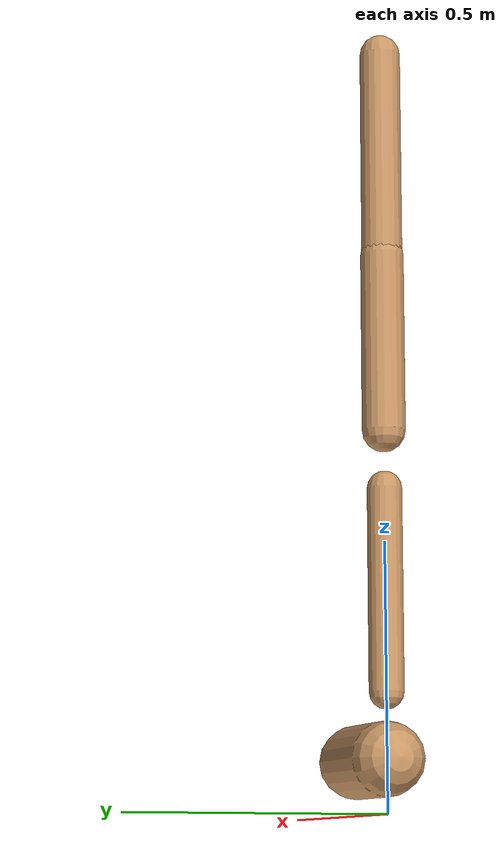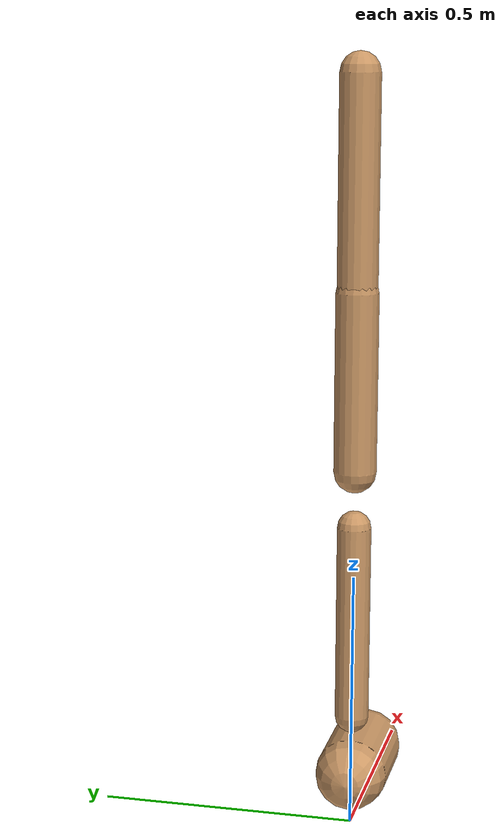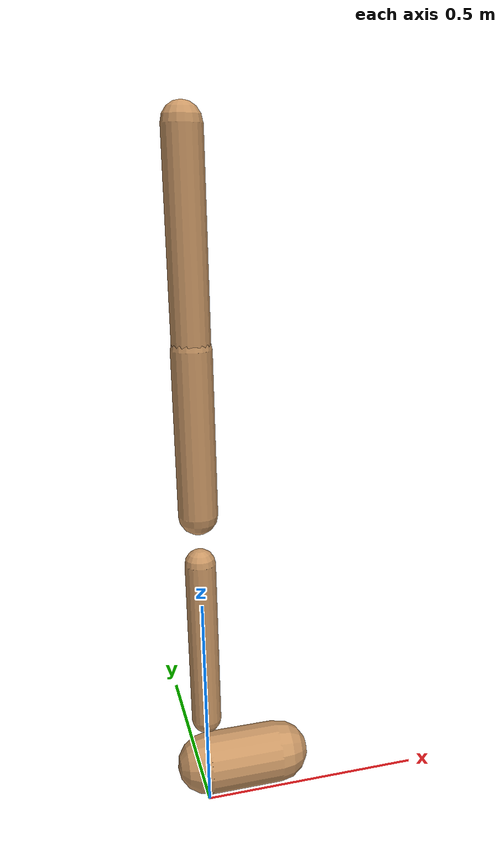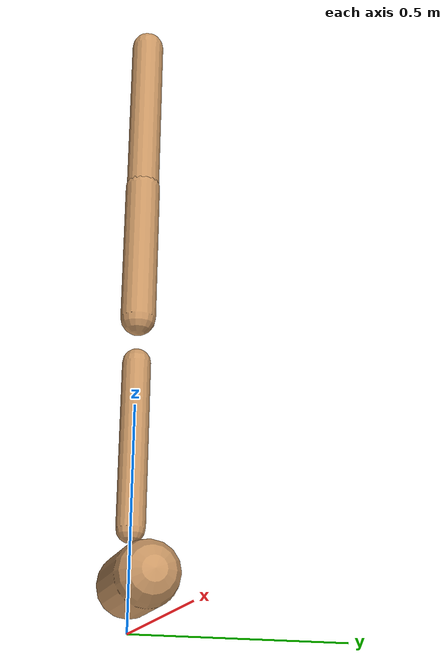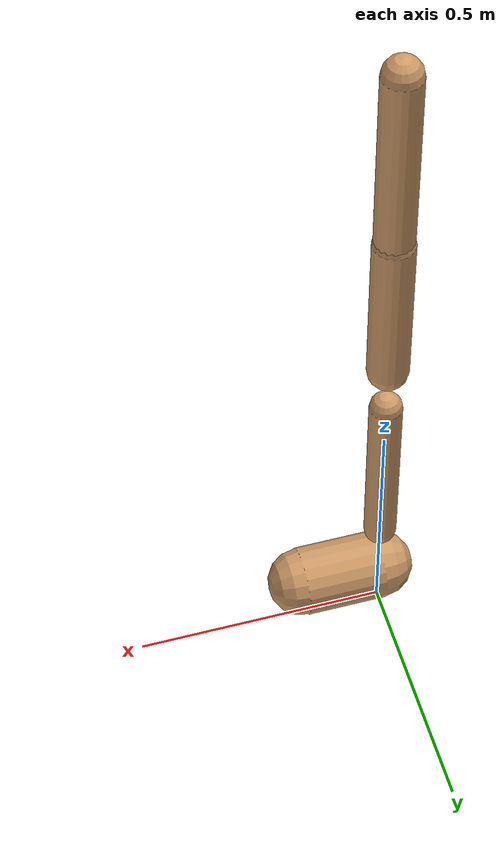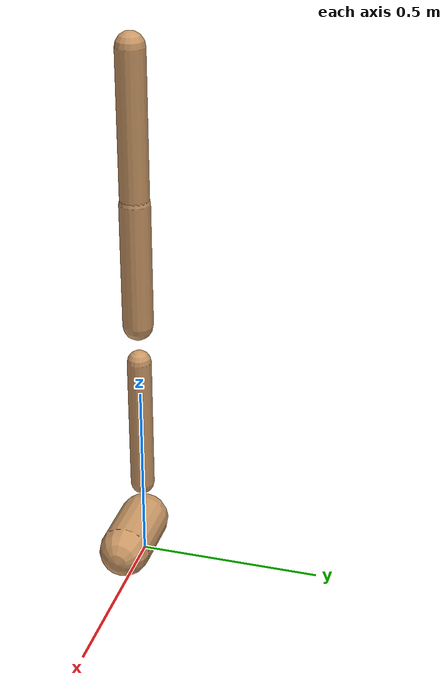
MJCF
<mujoco model="walker2d">
  <compiler angle="degree" coordinate="global" inertiafromgeom="true" />
  <default>
    <joint armature="0.01" damping=".1" limited="true" />
    <geom conaffinity="0" condim="3" contype="1" density="1000" friction="0.8 .1 .1" rgba="0.8 0.6 .4 1" />
  </default>
  <option integrator="RK4" timestep="0.002" />
  <worldbody>

    <body name="torso" pos="0 0 -0.23168534626503176">
      <joint armature="0" axis="1 0 0" damping="0" limited="false" name="ignorex" pos="0 0 0" stiffness="0" type="slide" />
      <joint armature="0" axis="0 0 1" damping="0" limited="false" name="ignorez" pos="0 0 0" ref="1.25" stiffness="0" type="slide" />
      <joint armature="0" axis="0 1 0" damping="0" limited="false" name="ignorey" pos="0 0 0" stiffness="0" type="hinge" />
      <geom fromto="0 0 1.45 0 0 1.05" name="torso_geom" size="0.038573229014749605" type="capsule" />
      <body name="thigh">
        <joint axis="0 -1 0" name="thigh_joint" pos="0 0 1.05" range="-150 0" type="hinge" />
        <geom fromto="0.0 0.0 1.05 0.0 0.0 0.7097456903360677" name="thigh_geom" size="0.04082527565198171" type="capsule" />
        <body name="leg" pos="0.0 0.0 0.10974569033606774">
          <joint axis="0 -1 0" name="leg_joint" pos="0 0 0.6" range="-150 0" type="hinge" />
          <geom fromto="0.0 0.0 0.6 0.0 0.0 0.22193965592896409" name="leg_geom" size="0.03266022052158537" type="capsule" />
          <body name="foot" pos="0.0 0.0 0.12193965592896408">
            <joint axis="0 -1 0" name="foot_joint" pos="0 0 0.1" range="-45 45" type="hinge" />
            <geom fromto="0.0 0.0 0.1 0.1624935537255418 0.0 0.1" name="foot_geom" size="0.06944579412683986" type="capsule" />
          </body>
        </body>
      </body>

      <body name="thigh_left">
        <joint axis="0 -1 0" name="thigh_left_joint" pos="0 0 1.05" range="-150 0" type="hinge" />
        <geom fromto="0.0 0.0 1.05 0.0 0.0 0.7097456903360677" name="thigh_left_geom" rgba=".7 .3 .6 1" size="0.04082527565198171" type="capsule" />
        <body name="leg_left" pos="0.0 0.0 0.10974569033606774">
          <joint axis="0 -1 0" name="leg_left_joint" pos="0 0 0.6" range="-150 0" type="hinge" />
          <geom fromto="0.0 0.0 0.6 0.0 0.0 0.22193965592896409" name="leg_left_geom" rgba=".7 .3 .6 1" size="0.03266022052158537" type="capsule" />
          <body name="foot_left" pos="0.0 0.0 0.12193965592896408">
            <joint axis="0 -1 0" name="foot_left_joint" pos="0 0 0.1" range="-45 45" type="hinge" />
            <geom fromto="0.0 0.0 0.1 0.1624935537255418 0.0 0.1" name="foot_left_geom" rgba=".7 .3 .6 1" size="0.06944579412683986" type="capsule" />
          </body>
        </body>
      </body>
    </body>
  </worldbody>
  <actuator>

    <motor ctrllimited="true" ctrlrange="-1.0 1.0" gear="100" joint="thigh_joint" />
    <motor ctrllimited="true" ctrlrange="-1.0 1.0" gear="100" joint="leg_joint" />
    <motor ctrllimited="true" ctrlrange="-1.0 1.0" gear="100" joint="foot_joint" />
    <motor ctrllimited="true" ctrlrange="-1.0 1.0" gear="100" joint="thigh_left_joint" />
    <motor ctrllimited="true" ctrlrange="-1.0 1.0" gear="100" joint="leg_left_joint" />
    <motor ctrllimited="true" ctrlrange="-1.0 1.0" gear="100" joint="foot_left_joint" />

  </actuator>
</mujoco>
